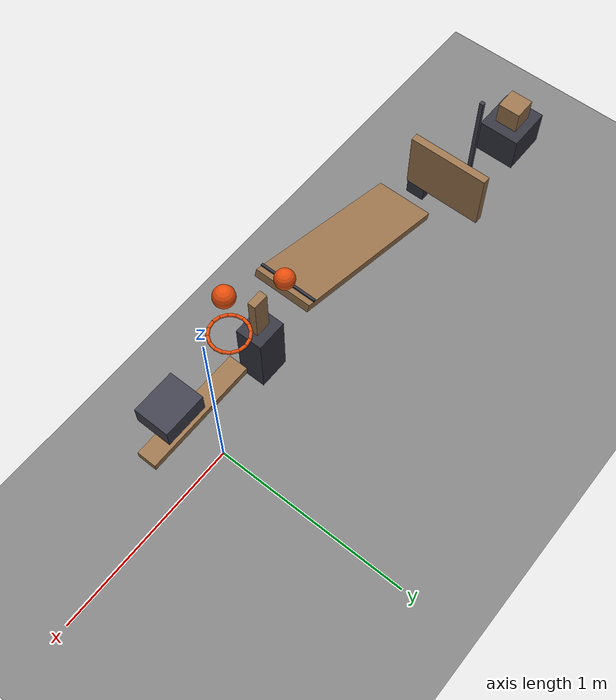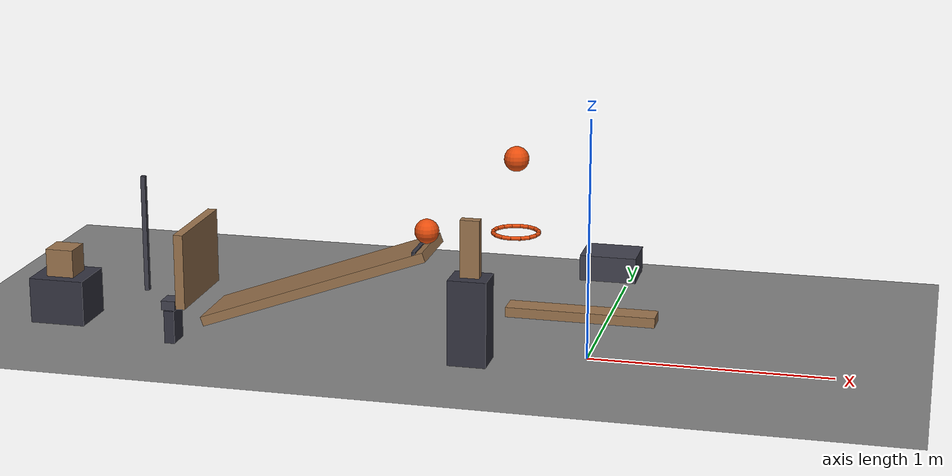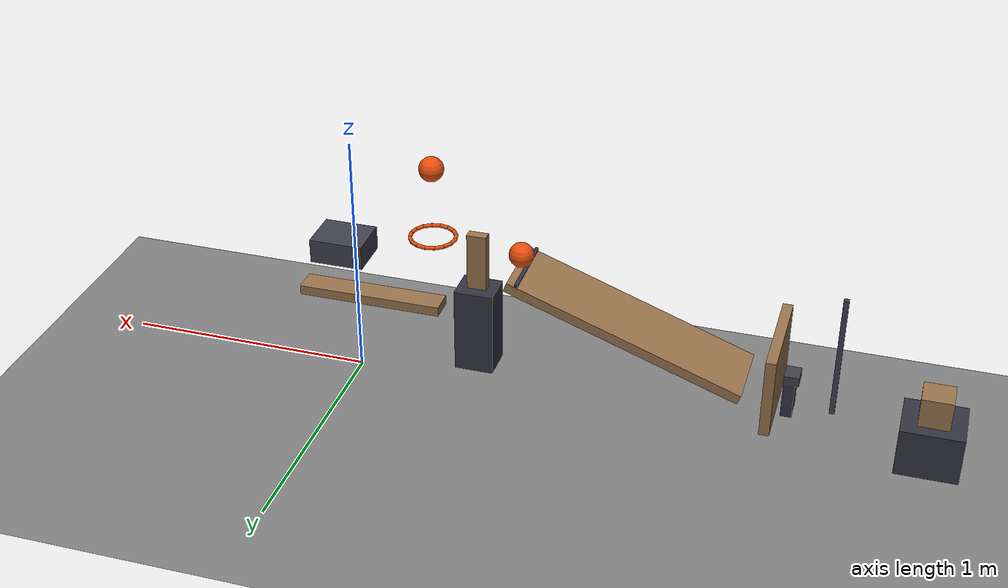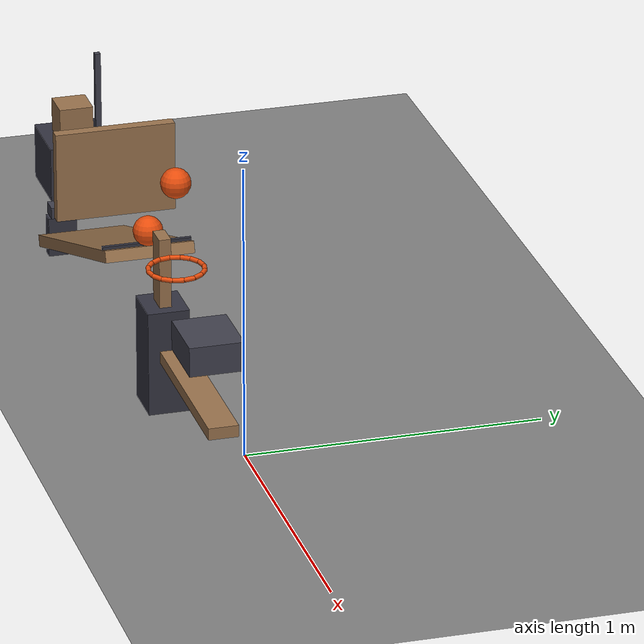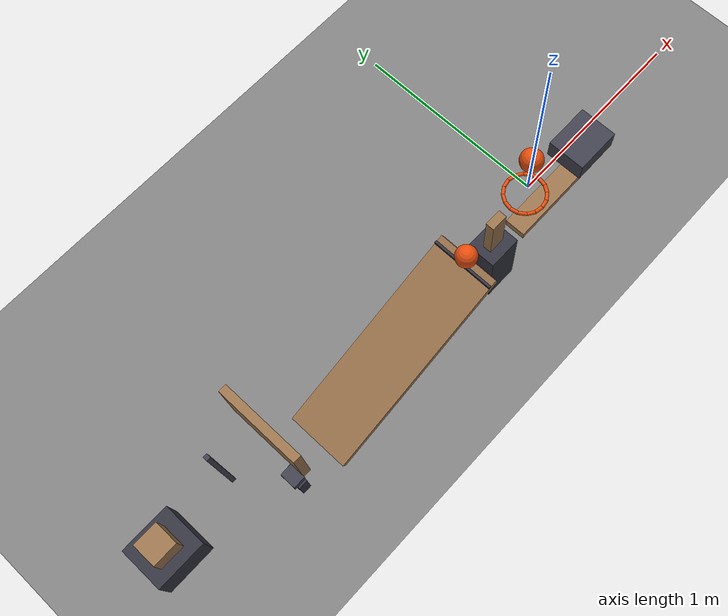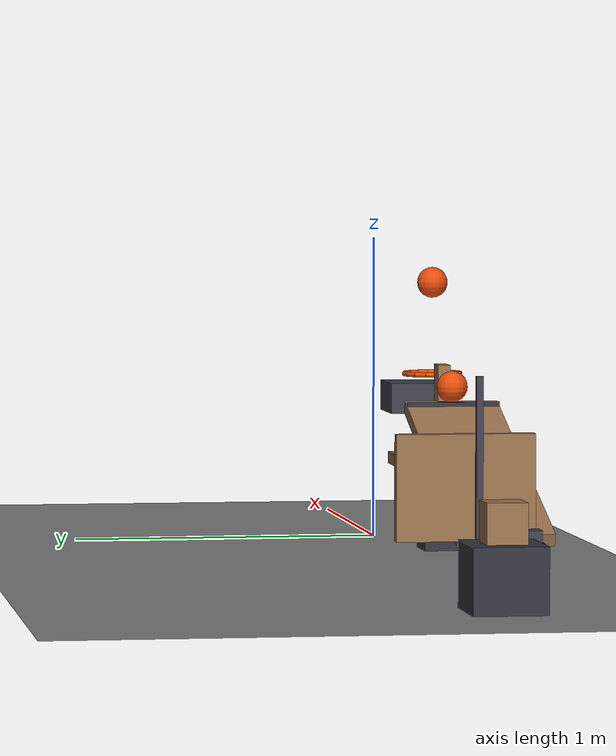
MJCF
<mujoco model="gravity_driven_chain_with_passive_releases">
  <compiler angle="radian"/>
  <option timestep="0.002"/>
  <worldbody>
    <geom name="floor" type="plane" size="6 6 0.1" friction="0.72 0 0"/>
    <body name="lever1" pos="0 -0.15 0.24">
      <joint name="lever_hinge" type="hinge" pos="0 0 0" axis="0 1 0" limited="true" range="-0.785398 0" damping="0.04"/>
      <geom name="lever1" type="box" pos="0 0 0" size="0.3 0.05 0.02" mass="0.5" friction="0.72 0 0" solref="0.01 0.715646" rgba="0.6 0.45 0.3 1"/>
    </body>
    <body name="ring1">
      <geom name="ring1_00" type="capsule" size="0.008" fromto="-0.178 -0.15 0.56 -0.185003 -0.114793 0.56" friction="0.72 0 0" solref="0.01 0.715646" rgba="0.9 0.3 0.05 1"/>
      <geom name="ring1_01" type="capsule" size="0.008" fromto="-0.185003 -0.114793 0.56 -0.204946 -0.0849462 0.56" friction="0.72 0 0" solref="0.01 0.715646" rgba="0.9 0.3 0.05 1"/>
      <geom name="ring1_02" type="capsule" size="0.008" fromto="-0.204946 -0.0849462 0.56 -0.234793 -0.0650031 0.56" friction="0.72 0 0" solref="0.01 0.715646" rgba="0.9 0.3 0.05 1"/>
      <geom name="ring1_03" type="capsule" size="0.008" fromto="-0.234793 -0.0650031 0.56 -0.27 -0.058 0.56" friction="0.72 0 0" solref="0.01 0.715646" rgba="0.9 0.3 0.05 1"/>
      <geom name="ring1_04" type="capsule" size="0.008" fromto="-0.27 -0.058 0.56 -0.305207 -0.0650031 0.56" friction="0.72 0 0" solref="0.01 0.715646" rgba="0.9 0.3 0.05 1"/>
      <geom name="ring1_05" type="capsule" size="0.008" fromto="-0.305207 -0.0650031 0.56 -0.335054 -0.0849462 0.56" friction="0.72 0 0" solref="0.01 0.715646" rgba="0.9 0.3 0.05 1"/>
      <geom name="ring1_06" type="capsule" size="0.008" fromto="-0.335054 -0.0849462 0.56 -0.354997 -0.114793 0.56" friction="0.72 0 0" solref="0.01 0.715646" rgba="0.9 0.3 0.05 1"/>
      <geom name="ring1_07" type="capsule" size="0.008" fromto="-0.354997 -0.114793 0.56 -0.362 -0.15 0.56" friction="0.72 0 0" solref="0.01 0.715646" rgba="0.9 0.3 0.05 1"/>
      <geom name="ring1_08" type="capsule" size="0.008" fromto="-0.362 -0.15 0.56 -0.354997 -0.185207 0.56" friction="0.72 0 0" solref="0.01 0.715646" rgba="0.9 0.3 0.05 1"/>
      <geom name="ring1_09" type="capsule" size="0.008" fromto="-0.354997 -0.185207 0.56 -0.335054 -0.215054 0.56" friction="0.72 0 0" solref="0.01 0.715646" rgba="0.9 0.3 0.05 1"/>
      <geom name="ring1_10" type="capsule" size="0.008" fromto="-0.335054 -0.215054 0.56 -0.305207 -0.234997 0.56" friction="0.72 0 0" solref="0.01 0.715646" rgba="0.9 0.3 0.05 1"/>
      <geom name="ring1_11" type="capsule" size="0.008" fromto="-0.305207 -0.234997 0.56 -0.27 -0.242 0.56" friction="0.72 0 0" solref="0.01 0.715646" rgba="0.9 0.3 0.05 1"/>
      <geom name="ring1_12" type="capsule" size="0.008" fromto="-0.27 -0.242 0.56 -0.234793 -0.234997 0.56" friction="0.72 0 0" solref="0.01 0.715646" rgba="0.9 0.3 0.05 1"/>
      <geom name="ring1_13" type="capsule" size="0.008" fromto="-0.234793 -0.234997 0.56 -0.204946 -0.215054 0.56" friction="0.72 0 0" solref="0.01 0.715646" rgba="0.9 0.3 0.05 1"/>
      <geom name="ring1_14" type="capsule" size="0.008" fromto="-0.204946 -0.215054 0.56 -0.185003 -0.185207 0.56" friction="0.72 0 0" solref="0.01 0.715646" rgba="0.9 0.3 0.05 1"/>
      <geom name="ring1_15" type="capsule" size="0.008" fromto="-0.185003 -0.185207 0.56 -0.178 -0.15 0.56" friction="0.72 0 0" solref="0.01 0.715646" rgba="0.9 0.3 0.05 1"/>
    </body>
    <body name="ball1" pos="-0.27 -0.15 0.86">
      <freejoint/>
      <geom name="ball1" type="sphere" pos="0 0 0" size="0.05" mass="0.2" condim="6" friction="0.72 0 0" solref="0.01 0.715646" rgba="0.9 0.3 0.05 1"/>
    </body>
    <body name="cart1" pos="0.115 -0.15 0.46">
      <joint name="cart_track" type="slide" pos="0 0 0" axis="1 0 0" limited="true" range="-0.5 0" damping="0.2"/>
      <geom name="cart1" type="box" pos="0 0 0" size="0.11 0.09 0.05" mass="0.5" friction="0.72 0 0" solref="0.01 0.715646" rgba="0.25 0.25 0.3 1"/>
    </body>
    <body name="domino plinth">
      <geom name="domino plinth" type="box" pos="-0.455 -0.15 0.18" size="0.08 0.07 0.18" friction="0.72 0 0" solref="0.01 0.715646" rgba="0.2 0.2 0.25 1"/>
    </body>
    <body name="domino1" pos="-0.455 -0.15 0.48">
      <freejoint/>
      <geom name="domino1" type="box" pos="0 0 0" size="0.04 0.02 0.12" mass="0.25" friction="0.72 0 0" solref="0.01 0.715646" rgba="0.6 0.45 0.3 1"/>
    </body>
    <body name="ramp1">
      <geom name="ramp1" type="box" pos="-1.0809 -0.15 0.302216" size="0.5 0.15 0.02" euler="0 2.79253 0" friction="0.72 0 0" solref="0.01 0.715646" rgba="0.6 0.45 0.3 1"/>
    </body>
    <body name="ramp ball retainer">
      <geom name="ramp ball retainer" type="box" pos="-0.6555 -0.15 0.484154" size="0.006 0.15 0.007" friction="0.72 0 0" solref="0.01 0.715646" rgba="0.2 0.2 0.25 1"/>
    </body>
    <body name="ball2" pos="-0.635 -0.15 0.539005">
      <freejoint/>
      <geom name="ball2" type="sphere" pos="0 0 0" size="0.05" mass="0.2" condim="6" friction="0.72 0 0" solref="0.01 0.715646" rgba="0.9 0.3 0.05 1"/>
    </body>
    <body name="door latch ledge">
      <geom name="door latch ledge" type="box" pos="-1.72159 -0.18 0.07" size="0.022 0.05 0.07" friction="0.72 0 0" solref="0.01 0.715646" rgba="0.2 0.2 0.25 1"/>
    </body>
    <body name="door latch" pos="-1.72759 -0.18 0.16">
      <freejoint/>
      <geom name="door latch" type="box" pos="0 0 0" size="0.03 0.04 0.02" mass="1" friction="0.72 0 0" solref="0.01 0.715646" rgba="0.25 0.25 0.3 1"/>
    </body>
    <body name="door1" pos="-1.67759 0.21 0.305">
      <joint name="door_hinge" type="hinge" pos="0 0 0" axis="0 0 1" limited="true" range="-1.22173 0" stiffness="2" springref="-1.22173" damping="0.04"/>
      <geom name="door1" type="box" pos="0 -0.21 0" size="0.02 0.21 0.16" mass="0.45" friction="0.72 0 0" solref="0.01 0.715646" rgba="0.6 0.45 0.3 1"/>
    </body>
    <body name="pendulum1" pos="-1.90259 0 0.65">
      <joint name="pendulum_hinge" type="hinge" pos="0 0 0" axis="0 1 0" limited="true" range="0 0.663225" damping="0.04"/>
      <geom name="pendulum1" type="box" pos="0 0 -0.25" size="0.01 0.01 0.25" mass="0.35" friction="0.72 0 0" solref="0.01 0.715646" rgba="0.25 0.25 0.3 1"/>
    </body>
    <body name="block plinth">
      <geom name="block plinth" type="box" pos="-2.277 0 0.0979973" size="0.12 0.11 0.0979973" friction="0.72 0 0" solref="0.01 0.715646" rgba="0.2 0.2 0.25 1"/>
    </body>
    <body name="block1" pos="-2.277 0 0.255995">
      <freejoint/>
      <geom name="block1" type="box" pos="0 0 0" size="0.06 0.06 0.06" mass="0.35" friction="0.72 0 0" solref="0.01 0.715646" rgba="0.6 0.45 0.3 1"/>
    </body>
  </worldbody>
  <keyframe>
    <key name="start" qpos="0 -0.27 -0.15 0.86 1 0 0 0 0 -0.455 -0.15 0.48 1 0 0 0 -0.635 -0.15 0.539005 1 0 0 0 -1.72759 -0.18 0.16 1 0 0 0 0 0 -2.277 0 0.255995 1 0 0 0" qvel="0 0 0 0 0 0 0 0 0 0 0 0 0 0 0 0 0 0 0 0 0 0 0 0 0 0 0 0 0 0 0 0 0 0"/>
  </keyframe>
</mujoco>
